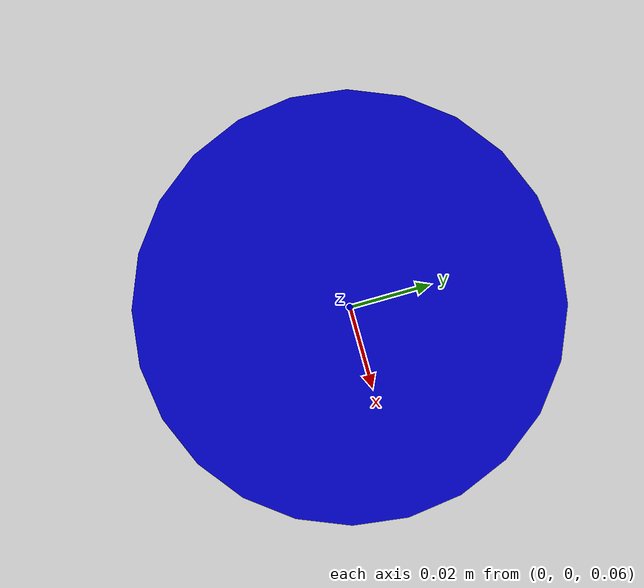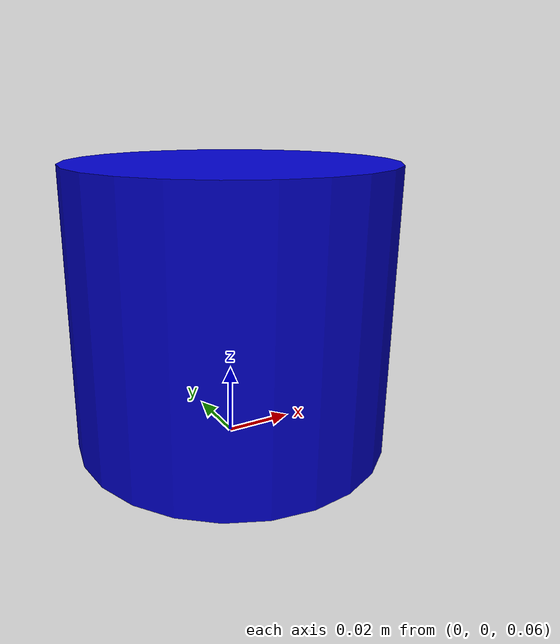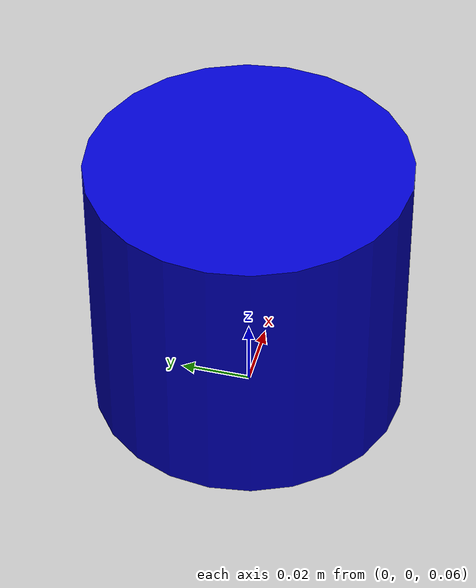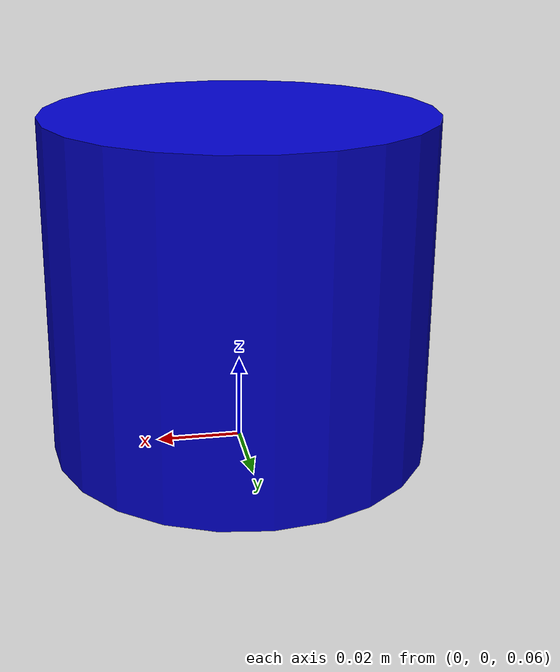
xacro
<?xml version="1.0"?>
<robot xmlns:xacro="http://www.ros.org/wiki/xacro">

  <link name="base_footprint"/>

  <joint name="base_footprint_joint" type="fixed">
    <parent link="base_footprint"/>
    <child link="base_link"/>
    <origin xyz="0 0 0.1" rpy="0 0 0"/>
  </joint>

  <link name="base_link">
    <visual>
      <geometry>
        <cylinder radius="0.045" length="0.08"/>
      </geometry>
      <material name="blue">
        <color rgba="0.0 0.0 0.8 1.0"/>
      </material>
    </visual>
  </link>

</robot>
